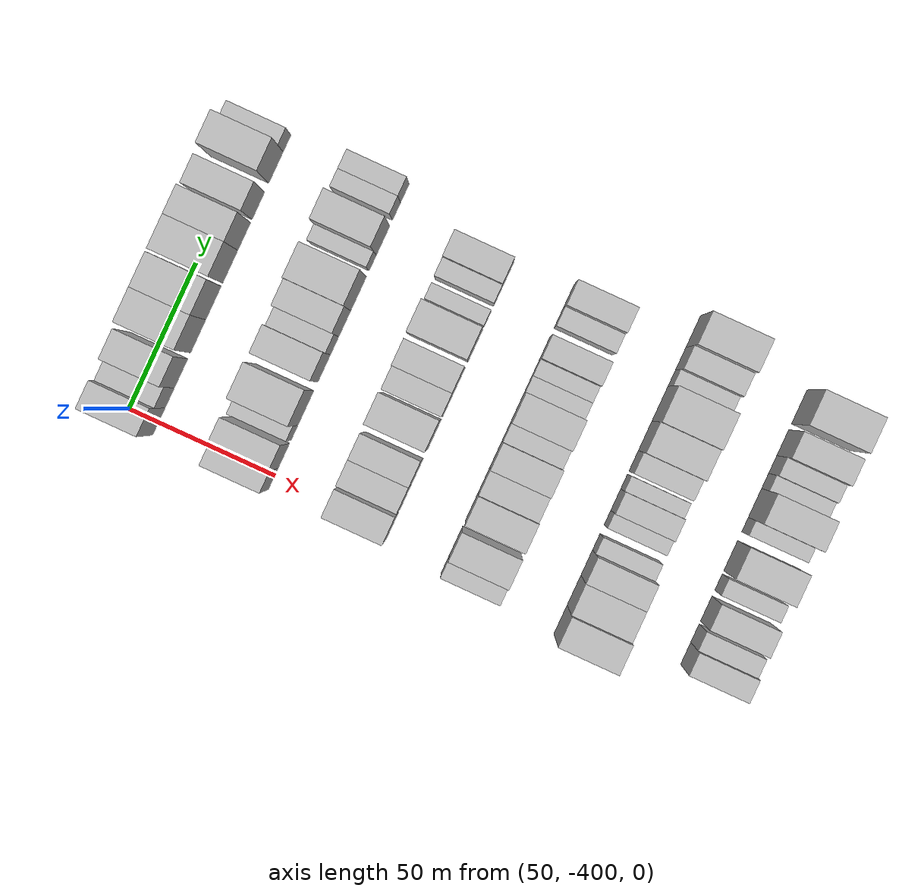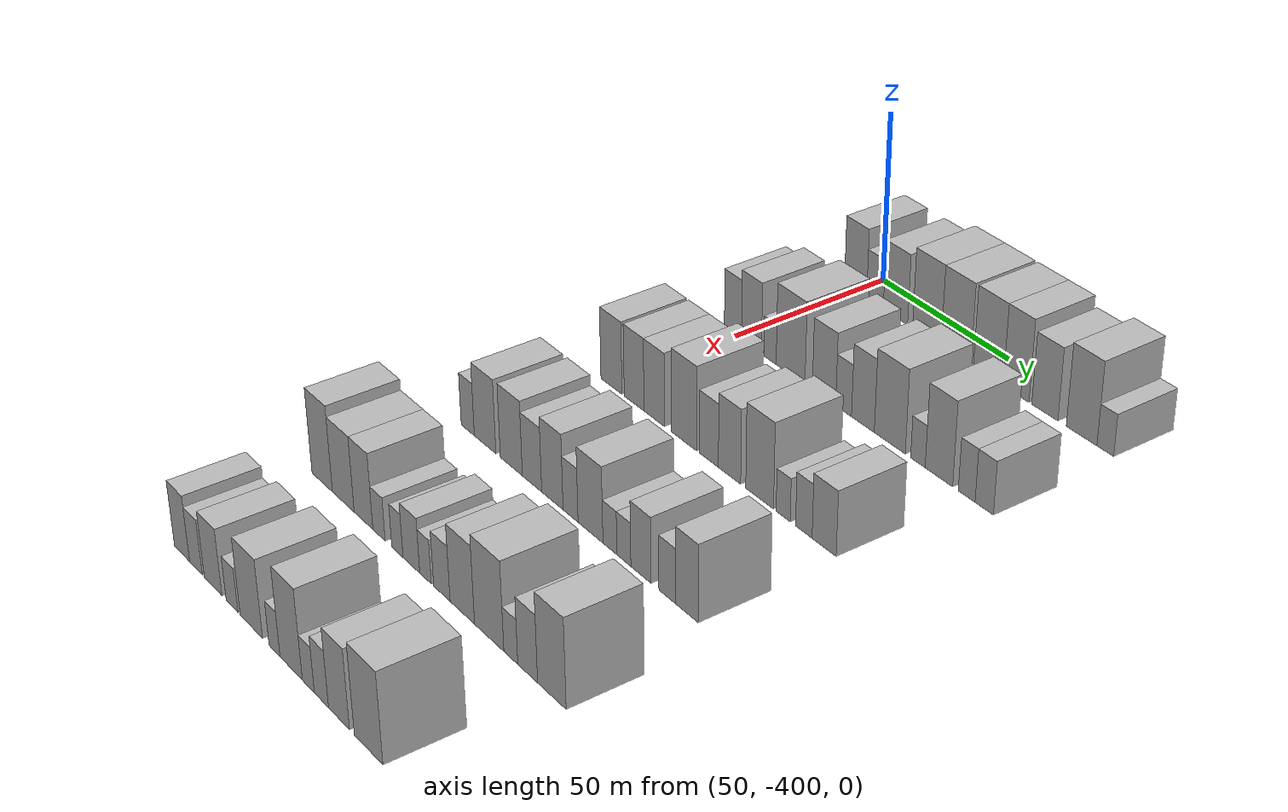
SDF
<sdf version="1.6">
 <world name="default">
  <model name="building_24">
   <static>1</static>
   <pose>50.0000 -399.8386 0 0.000000 0.000000 0.000000</pose>
   <link name="link">
    <pose>0 0 10.50 0 0 0</pose>
    <collision name="collision"><geometry><box><size>20.0000 9.3667 21.0000</size></box></geometry></collision>
    <visual name="visual">
     <cast_shadows>0</cast_shadows>
     <geometry><box><size>20.0000 9.3667 21.0000</size></box></geometry>
     <material>
      <script>
       <uri>model://HANNAS_wall/materials/scripts</uri>
       <uri>model://HANNAS_wall/materials/textures</uri>
       <name>vrc/HANNAS_wall</name>
      </script>
     </material>
    </visual>
   </link>
  </model>
  <model name="building_25">
   <static>1</static>
   <pose>50.0000 -391.6832 0 0.000000 0.000000 0.000000</pose>
   <link name="link">
    <pose>0 0 7.50 0 0 0</pose>
    <collision name="collision"><geometry><box><size>20.0000 6.9440 15.0000</size></box></geometry></collision>
    <visual name="visual">
     <cast_shadows>0</cast_shadows>
     <geometry><box><size>20.0000 6.9440 15.0000</size></box></geometry>
     <material>
      <script>
       <uri>model://HANNAS_wall/materials/scripts</uri>
       <uri>model://HANNAS_wall/materials/textures</uri>
       <name>vrc/HANNAS_wall</name>
      </script>
     </material>
    </visual>
   </link>
  </model>
  <model name="building_26">
   <static>1</static>
   <pose>50.0000 -383.2100 0 0.000000 0.000000 0.000000</pose>
   <link name="link">
    <pose>0 0 10.50 0 0 0</pose>
    <collision name="collision"><geometry><box><size>20.0000 10.0023 21.0000</size></box></geometry></collision>
    <visual name="visual">
     <cast_shadows>0</cast_shadows>
     <geometry><box><size>20.0000 10.0023 21.0000</size></box></geometry>
     <material>
      <script>
       <uri>model://HANNAS_wall/materials/scripts</uri>
       <uri>model://HANNAS_wall/materials/textures</uri>
       <name>vrc/HANNAS_wall</name>
      </script>
     </material>
    </visual>
   </link>
  </model>
  <model name="building_27">
   <static>1</static>
   <pose>50.0000 -370.5010 0 0.000000 0.000000 0.000000</pose>
   <link name="link">
    <pose>0 0 12.00 0 0 0</pose>
    <collision name="collision"><geometry><box><size>20.0000 11.4157 24.0000</size></box></geometry></collision>
    <visual name="visual">
     <cast_shadows>0</cast_shadows>
     <geometry><box><size>20.0000 11.4157 24.0000</size></box></geometry>
     <material>
      <script>
       <uri>model://HANNAS_wall/materials/scripts</uri>
       <uri>model://HANNAS_wall/materials/textures</uri>
       <name>vrc/HANNAS_wall</name>
      </script>
     </material>
    </visual>
   </link>
  </model>
  <model name="building_28">
   <static>1</static>
   <pose>50.0000 -358.9997 0 0.000000 0.000000 0.000000</pose>
   <link name="link">
    <pose>0 0 12.00 0 0 0</pose>
    <collision name="collision"><geometry><box><size>20.0000 11.5869 24.0000</size></box></geometry></collision>
    <visual name="visual">
     <cast_shadows>0</cast_shadows>
     <geometry><box><size>20.0000 11.5869 24.0000</size></box></geometry>
     <material>
      <script>
       <uri>model://HANNAS_wall/materials/scripts</uri>
       <uri>model://HANNAS_wall/materials/textures</uri>
       <name>vrc/HANNAS_wall</name>
      </script>
     </material>
    </visual>
   </link>
  </model>
  <model name="building_29">
   <static>1</static>
   <pose>50.0000 -346.5559 0 0.000000 0.000000 0.000000</pose>
   <link name="link">
    <pose>0 0 12.00 0 0 0</pose>
    <collision name="collision"><geometry><box><size>20.0000 11.3006 24.0000</size></box></geometry></collision>
    <visual name="visual">
     <cast_shadows>0</cast_shadows>
     <geometry><box><size>20.0000 11.3006 24.0000</size></box></geometry>
     <material>
      <script>
       <uri>model://HANNAS_wall/materials/scripts</uri>
       <uri>model://HANNAS_wall/materials/textures</uri>
       <name>vrc/HANNAS_wall</name>
      </script>
     </material>
    </visual>
   </link>
  </model>
  <model name="building_30">
   <static>1</static>
   <pose>50.0000 -336.1024 0 0.000000 0.000000 0.000000</pose>
   <link name="link">
    <pose>0 0 12.00 0 0 0</pose>
    <collision name="collision"><geometry><box><size>20.0000 9.6063 24.0000</size></box></geometry></collision>
    <visual name="visual">
     <cast_shadows>0</cast_shadows>
     <geometry><box><size>20.0000 9.6063 24.0000</size></box></geometry>
     <material>
      <script>
       <uri>model://HANNAS_wall/materials/scripts</uri>
       <uri>model://HANNAS_wall/materials/textures</uri>
       <name>vrc/HANNAS_wall</name>
      </script>
     </material>
    </visual>
   </link>
  </model>
  <model name="building_31">
   <static>1</static>
   <pose>50.0000 -325.5463 0 0.000000 0.000000 0.000000</pose>
   <link name="link">
    <pose>0 0 10.50 0 0 0</pose>
    <collision name="collision"><geometry><box><size>20.0000 9.5060 21.0000</size></box></geometry></collision>
    <visual name="visual">
     <cast_shadows>0</cast_shadows>
     <geometry><box><size>20.0000 9.5060 21.0000</size></box></geometry>
     <material>
      <script>
       <uri>model://HANNAS_wall/materials/scripts</uri>
       <uri>model://HANNAS_wall/materials/textures</uri>
       <name>vrc/HANNAS_wall</name>
      </script>
     </material>
    </visual>
   </link>
  </model>
  <model name="building_32">
   <static>1</static>
   <pose>50.0000 -312.3909 0 0.000000 0.000000 0.000000</pose>
   <link name="link">
    <pose>0 0 12.00 0 0 0</pose>
    <collision name="collision"><geometry><box><size>20.0000 10.8048 24.0000</size></box></geometry></collision>
    <visual name="visual">
     <cast_shadows>0</cast_shadows>
     <geometry><box><size>20.0000 10.8048 24.0000</size></box></geometry>
     <material>
      <script>
       <uri>model://HANNAS_wall/materials/scripts</uri>
       <uri>model://HANNAS_wall/materials/textures</uri>
       <name>vrc/HANNAS_wall</name>
      </script>
     </material>
    </visual>
   </link>
  </model>
  <model name="building_33">
   <static>1</static>
   <pose>50.0000 -304.0890 0 0.000000 0.000000 0.000000</pose>
   <link name="link">
    <pose>0 0 6.00 0 0 0</pose>
    <collision name="collision"><geometry><box><size>20.0000 5.7989 12.0000</size></box></geometry></collision>
    <visual name="visual">
     <cast_shadows>0</cast_shadows>
     <geometry><box><size>20.0000 5.7989 12.0000</size></box></geometry>
     <material>
      <script>
       <uri>model://HANNAS_wall/materials/scripts</uri>
       <uri>model://HANNAS_wall/materials/textures</uri>
       <name>vrc/HANNAS_wall</name>
      </script>
     </material>
    </visual>
   </link>
  </model>
  <model name="building_160">
   <static>1</static>
   <pose>90.0000 -401.1252 0 0.000000 0.000000 0.000000</pose>
   <link name="link">
    <pose>0 0 9.00 0 0 0</pose>
    <collision name="collision"><geometry><box><size>20.0000 7.4250 18.0000</size></box></geometry></collision>
    <visual name="visual">
     <cast_shadows>0</cast_shadows>
     <geometry><box><size>20.0000 7.4250 18.0000</size></box></geometry>
     <material>
      <script>
       <uri>model://HANNAS_wall/materials/scripts</uri>
       <uri>model://HANNAS_wall/materials/textures</uri>
       <name>vrc/HANNAS_wall</name>
      </script>
     </material>
    </visual>
   </link>
  </model>
  <model name="building_161">
   <static>1</static>
   <pose>90.0000 -393.1442 0 0.000000 0.000000 0.000000</pose>
   <link name="link">
    <pose>0 0 10.50 0 0 0</pose>
    <collision name="collision"><geometry><box><size>20.0000 8.5371 21.0000</size></box></geometry></collision>
    <visual name="visual">
     <cast_shadows>0</cast_shadows>
     <geometry><box><size>20.0000 8.5371 21.0000</size></box></geometry>
     <material>
      <script>
       <uri>model://HANNAS_wall/materials/scripts</uri>
       <uri>model://HANNAS_wall/materials/textures</uri>
       <name>vrc/HANNAS_wall</name>
      </script>
     </material>
    </visual>
   </link>
  </model>
  <model name="building_162">
   <static>1</static>
   <pose>90.0000 -385.2806 0 0.000000 0.000000 0.000000</pose>
   <link name="link">
    <pose>0 0 6.00 0 0 0</pose>
    <collision name="collision"><geometry><box><size>20.0000 5.1901 12.0000</size></box></geometry></collision>
    <visual name="visual">
     <cast_shadows>0</cast_shadows>
     <geometry><box><size>20.0000 5.1901 12.0000</size></box></geometry>
     <material>
      <script>
       <uri>model://HANNAS_wall/materials/scripts</uri>
       <uri>model://HANNAS_wall/materials/textures</uri>
       <name>vrc/HANNAS_wall</name>
      </script>
     </material>
    </visual>
   </link>
  </model>
  <model name="building_163">
   <static>1</static>
   <pose>90.0000 -376.7225 0 0.000000 0.000000 0.000000</pose>
   <link name="link">
    <pose>0 0 12.00 0 0 0</pose>
    <collision name="collision"><geometry><box><size>20.0000 11.9262 24.0000</size></box></geometry></collision>
    <visual name="visual">
     <cast_shadows>0</cast_shadows>
     <geometry><box><size>20.0000 11.9262 24.0000</size></box></geometry>
     <material>
      <script>
       <uri>model://HANNAS_wall/materials/scripts</uri>
       <uri>model://HANNAS_wall/materials/textures</uri>
       <name>vrc/HANNAS_wall</name>
      </script>
     </material>
    </visual>
   </link>
  </model>
  <model name="building_164">
   <static>1</static>
   <pose>90.0000 -363.0831 0 0.000000 0.000000 0.000000</pose>
   <link name="link">
    <pose>0 0 10.50 0 0 0</pose>
    <collision name="collision"><geometry><box><size>20.0000 9.3526 21.0000</size></box></geometry></collision>
    <visual name="visual">
     <cast_shadows>0</cast_shadows>
     <geometry><box><size>20.0000 9.3526 21.0000</size></box></geometry>
     <material>
      <script>
       <uri>model://HANNAS_wall/materials/scripts</uri>
       <uri>model://HANNAS_wall/materials/textures</uri>
       <name>vrc/HANNAS_wall</name>
      </script>
     </material>
    </visual>
   </link>
  </model>
  <model name="building_165">
   <static>1</static>
   <pose>90.0000 -355.2886 0 0.000000 0.000000 0.000000</pose>
   <link name="link">
    <pose>0 0 7.50 0 0 0</pose>
    <collision name="collision"><geometry><box><size>20.0000 6.2364 15.0000</size></box></geometry></collision>
    <visual name="visual">
     <cast_shadows>0</cast_shadows>
     <geometry><box><size>20.0000 6.2364 15.0000</size></box></geometry>
     <material>
      <script>
       <uri>model://HANNAS_wall/materials/scripts</uri>
       <uri>model://HANNAS_wall/materials/textures</uri>
       <name>vrc/HANNAS_wall</name>
      </script>
     </material>
    </visual>
   </link>
  </model>
  <model name="building_166">
   <static>1</static>
   <pose>90.0000 -347.7368 0 0.000000 0.000000 0.000000</pose>
   <link name="link">
    <pose>0 0 10.50 0 0 0</pose>
    <collision name="collision"><geometry><box><size>20.0000 8.8673 21.0000</size></box></geometry></collision>
    <visual name="visual">
     <cast_shadows>0</cast_shadows>
     <geometry><box><size>20.0000 8.8673 21.0000</size></box></geometry>
     <material>
      <script>
       <uri>model://HANNAS_wall/materials/scripts</uri>
       <uri>model://HANNAS_wall/materials/textures</uri>
       <name>vrc/HANNAS_wall</name>
      </script>
     </material>
    </visual>
   </link>
  </model>
  <model name="building_167">
   <static>1</static>
   <pose>90.0000 -337.4164 0 0.000000 0.000000 0.000000</pose>
   <link name="link">
    <pose>0 0 12.00 0 0 0</pose>
    <collision name="collision"><geometry><box><size>20.0000 11.7734 24.0000</size></box></geometry></collision>
    <visual name="visual">
     <cast_shadows>0</cast_shadows>
     <geometry><box><size>20.0000 11.7734 24.0000</size></box></geometry>
     <material>
      <script>
       <uri>model://HANNAS_wall/materials/scripts</uri>
       <uri>model://HANNAS_wall/materials/textures</uri>
       <name>vrc/HANNAS_wall</name>
      </script>
     </material>
    </visual>
   </link>
  </model>
  <model name="building_168">
   <static>1</static>
   <pose>90.0000 -326.8389 0 0.000000 0.000000 0.000000</pose>
   <link name="link">
    <pose>0 0 6.00 0 0 0</pose>
    <collision name="collision"><geometry><box><size>20.0000 5.3818 12.0000</size></box></geometry></collision>
    <visual name="visual">
     <cast_shadows>0</cast_shadows>
     <geometry><box><size>20.0000 5.3818 12.0000</size></box></geometry>
     <material>
      <script>
       <uri>model://HANNAS_wall/materials/scripts</uri>
       <uri>model://HANNAS_wall/materials/textures</uri>
       <name>vrc/HANNAS_wall</name>
      </script>
     </material>
    </visual>
   </link>
  </model>
  <model name="building_169">
   <static>1</static>
   <pose>90.0000 -319.1315 0 0.000000 0.000000 0.000000</pose>
   <link name="link">
    <pose>0 0 12.00 0 0 0</pose>
    <collision name="collision"><geometry><box><size>20.0000 10.0330 24.0000</size></box></geometry></collision>
    <visual name="visual">
     <cast_shadows>0</cast_shadows>
     <geometry><box><size>20.0000 10.0330 24.0000</size></box></geometry>
     <material>
      <script>
       <uri>model://HANNAS_wall/materials/scripts</uri>
       <uri>model://HANNAS_wall/materials/textures</uri>
       <name>vrc/HANNAS_wall</name>
      </script>
     </material>
    </visual>
   </link>
  </model>
  <model name="building_170">
   <static>1</static>
   <pose>90.0000 -309.1130 0 0.000000 0.000000 0.000000</pose>
   <link name="link">
    <pose>0 0 7.50 0 0 0</pose>
    <collision name="collision"><geometry><box><size>20.0000 6.0039 15.0000</size></box></geometry></collision>
    <visual name="visual">
     <cast_shadows>0</cast_shadows>
     <geometry><box><size>20.0000 6.0039 15.0000</size></box></geometry>
     <material>
      <script>
       <uri>model://HANNAS_wall/materials/scripts</uri>
       <uri>model://HANNAS_wall/materials/textures</uri>
       <name>vrc/HANNAS_wall</name>
      </script>
     </material>
    </visual>
   </link>
  </model>
  <model name="building_171">
   <static>1</static>
   <pose>90.0000 -302.8953 0 0.000000 0.000000 0.000000</pose>
   <link name="link">
    <pose>0 0 7.50 0 0 0</pose>
    <collision name="collision"><geometry><box><size>20.0000 6.4315 15.0000</size></box></geometry></collision>
    <visual name="visual">
     <cast_shadows>0</cast_shadows>
     <geometry><box><size>20.0000 6.4315 15.0000</size></box></geometry>
     <material>
      <script>
       <uri>model://HANNAS_wall/materials/scripts</uri>
       <uri>model://HANNAS_wall/materials/textures</uri>
       <name>vrc/HANNAS_wall</name>
      </script>
     </material>
    </visual>
   </link>
  </model>
  <model name="building_303">
   <static>1</static>
   <pose>130.0000 -398.7020 0 0.000000 0.000000 0.000000</pose>
   <link name="link">
    <pose>0 0 10.50 0 0 0</pose>
    <collision name="collision"><geometry><box><size>20.0000 9.3342 21.0000</size></box></geometry></collision>
    <visual name="visual">
     <cast_shadows>0</cast_shadows>
     <geometry><box><size>20.0000 9.3342 21.0000</size></box></geometry>
     <material>
      <script>
       <uri>model://HANNAS_wall/materials/scripts</uri>
       <uri>model://HANNAS_wall/materials/textures</uri>
       <name>vrc/HANNAS_wall</name>
      </script>
     </material>
    </visual>
   </link>
  </model>
  <model name="building_304">
   <static>1</static>
   <pose>130.0000 -388.7244 0 0.000000 0.000000 0.000000</pose>
   <link name="link">
    <pose>0 0 10.50 0 0 0</pose>
    <collision name="collision"><geometry><box><size>20.0000 8.6208 21.0000</size></box></geometry></collision>
    <visual name="visual">
     <cast_shadows>0</cast_shadows>
     <geometry><box><size>20.0000 8.6208 21.0000</size></box></geometry>
     <material>
      <script>
       <uri>model://HANNAS_wall/materials/scripts</uri>
       <uri>model://HANNAS_wall/materials/textures</uri>
       <name>vrc/HANNAS_wall</name>
      </script>
     </material>
    </visual>
   </link>
  </model>
  <model name="building_305">
   <static>1</static>
   <pose>130.0000 -380.0397 0 0.000000 0.000000 0.000000</pose>
   <link name="link">
    <pose>0 0 10.50 0 0 0</pose>
    <collision name="collision"><geometry><box><size>20.0000 8.7486 21.0000</size></box></geometry></collision>
    <visual name="visual">
     <cast_shadows>0</cast_shadows>
     <geometry><box><size>20.0000 8.7486 21.0000</size></box></geometry>
     <material>
      <script>
       <uri>model://HANNAS_wall/materials/scripts</uri>
       <uri>model://HANNAS_wall/materials/textures</uri>
       <name>vrc/HANNAS_wall</name>
      </script>
     </material>
    </visual>
   </link>
  </model>
  <model name="building_306">
   <static>1</static>
   <pose>130.0000 -367.4345 0 0.000000 0.000000 0.000000</pose>
   <link name="link">
    <pose>0 0 12.00 0 0 0</pose>
    <collision name="collision"><geometry><box><size>20.0000 10.4618 24.0000</size></box></geometry></collision>
    <visual name="visual">
     <cast_shadows>0</cast_shadows>
     <geometry><box><size>20.0000 10.4618 24.0000</size></box></geometry>
     <material>
      <script>
       <uri>model://HANNAS_wall/materials/scripts</uri>
       <uri>model://HANNAS_wall/materials/textures</uri>
       <name>vrc/HANNAS_wall</name>
      </script>
     </material>
    </visual>
   </link>
  </model>
  <model name="building_307">
   <static>1</static>
   <pose>130.0000 -357.2949 0 0.000000 0.000000 0.000000</pose>
   <link name="link">
    <pose>0 0 9.00 0 0 0</pose>
    <collision name="collision"><geometry><box><size>20.0000 7.8173 18.0000</size></box></geometry></collision>
    <visual name="visual">
     <cast_shadows>0</cast_shadows>
     <geometry><box><size>20.0000 7.8173 18.0000</size></box></geometry>
     <material>
      <script>
       <uri>model://HANNAS_wall/materials/scripts</uri>
       <uri>model://HANNAS_wall/materials/textures</uri>
       <name>vrc/HANNAS_wall</name>
      </script>
     </material>
    </visual>
   </link>
  </model>
  <model name="building_308">
   <static>1</static>
   <pose>130.0000 -348.9485 0 0.000000 0.000000 0.000000</pose>
   <link name="link">
    <pose>0 0 10.50 0 0 0</pose>
    <collision name="collision"><geometry><box><size>20.0000 8.8755 21.0000</size></box></geometry></collision>
    <visual name="visual">
     <cast_shadows>0</cast_shadows>
     <geometry><box><size>20.0000 8.8755 21.0000</size></box></geometry>
     <material>
      <script>
       <uri>model://HANNAS_wall/materials/scripts</uri>
       <uri>model://HANNAS_wall/materials/textures</uri>
       <name>vrc/HANNAS_wall</name>
      </script>
     </material>
    </visual>
   </link>
  </model>
  <model name="building_309">
   <static>1</static>
   <pose>130.0000 -337.1103 0 0.000000 0.000000 0.000000</pose>
   <link name="link">
    <pose>0 0 12.00 0 0 0</pose>
    <collision name="collision"><geometry><box><size>20.0000 10.8010 24.0000</size></box></geometry></collision>
    <visual name="visual">
     <cast_shadows>0</cast_shadows>
     <geometry><box><size>20.0000 10.8010 24.0000</size></box></geometry>
     <material>
      <script>
       <uri>model://HANNAS_wall/materials/scripts</uri>
       <uri>model://HANNAS_wall/materials/textures</uri>
       <name>vrc/HANNAS_wall</name>
      </script>
     </material>
    </visual>
   </link>
  </model>
  <model name="building_310">
   <static>1</static>
   <pose>130.0000 -328.0255 0 0.000000 0.000000 0.000000</pose>
   <link name="link">
    <pose>0 0 6.00 0 0 0</pose>
    <collision name="collision"><geometry><box><size>20.0000 5.3686 12.0000</size></box></geometry></collision>
    <visual name="visual">
     <cast_shadows>0</cast_shadows>
     <geometry><box><size>20.0000 5.3686 12.0000</size></box></geometry>
     <material>
      <script>
       <uri>model://HANNAS_wall/materials/scripts</uri>
       <uri>model://HANNAS_wall/materials/textures</uri>
       <name>vrc/HANNAS_wall</name>
      </script>
     </material>
    </visual>
   </link>
  </model>
  <model name="building_311">
   <static>1</static>
   <pose>130.0000 -320.2541 0 0.000000 0.000000 0.000000</pose>
   <link name="link">
    <pose>0 0 7.50 0 0 0</pose>
    <collision name="collision"><geometry><box><size>20.0000 6.1741 15.0000</size></box></geometry></collision>
    <visual name="visual">
     <cast_shadows>0</cast_shadows>
     <geometry><box><size>20.0000 6.1741 15.0000</size></box></geometry>
     <material>
      <script>
       <uri>model://HANNAS_wall/materials/scripts</uri>
       <uri>model://HANNAS_wall/materials/textures</uri>
       <name>vrc/HANNAS_wall</name>
      </script>
     </material>
    </visual>
   </link>
  </model>
  <model name="building_312">
   <static>1</static>
   <pose>130.0000 -312.7483 0 0.000000 0.000000 0.000000</pose>
   <link name="link">
    <pose>0 0 9.00 0 0 0</pose>
    <collision name="collision"><geometry><box><size>20.0000 8.8376 18.0000</size></box></geometry></collision>
    <visual name="visual">
     <cast_shadows>0</cast_shadows>
     <geometry><box><size>20.0000 8.8376 18.0000</size></box></geometry>
     <material>
      <script>
       <uri>model://HANNAS_wall/materials/scripts</uri>
       <uri>model://HANNAS_wall/materials/textures</uri>
       <name>vrc/HANNAS_wall</name>
      </script>
     </material>
    </visual>
   </link>
  </model>
  <model name="building_439">
   <static>1</static>
   <pose>170.0000 -402.5901 0 0.000000 0.000000 0.000000</pose>
   <link name="link">
    <pose>0 0 7.50 0 0 0</pose>
    <collision name="collision"><geometry><box><size>20.0000 6.0770 15.0000</size></box></geometry></collision>
    <visual name="visual">
     <cast_shadows>0</cast_shadows>
     <geometry><box><size>20.0000 6.0770 15.0000</size></box></geometry>
     <material>
      <script>
       <uri>model://HANNAS_wall/materials/scripts</uri>
       <uri>model://HANNAS_wall/materials/textures</uri>
       <name>vrc/HANNAS_wall</name>
      </script>
     </material>
    </visual>
   </link>
  </model>
  <model name="building_440">
   <static>1</static>
   <pose>170.0000 -394.6334 0 0.000000 0.000000 0.000000</pose>
   <link name="link">
    <pose>0 0 10.50 0 0 0</pose>
    <collision name="collision"><geometry><box><size>20.0000 9.8365 21.0000</size></box></geometry></collision>
    <visual name="visual">
     <cast_shadows>0</cast_shadows>
     <geometry><box><size>20.0000 9.8365 21.0000</size></box></geometry>
     <material>
      <script>
       <uri>model://HANNAS_wall/materials/scripts</uri>
       <uri>model://HANNAS_wall/materials/textures</uri>
       <name>vrc/HANNAS_wall</name>
      </script>
     </material>
    </visual>
   </link>
  </model>
  <model name="building_441">
   <static>1</static>
   <pose>170.0000 -382.8192 0 0.000000 0.000000 0.000000</pose>
   <link name="link">
    <pose>0 0 10.50 0 0 0</pose>
    <collision name="collision"><geometry><box><size>20.0000 9.7918 21.0000</size></box></geometry></collision>
    <visual name="visual">
     <cast_shadows>0</cast_shadows>
     <geometry><box><size>20.0000 9.7918 21.0000</size></box></geometry>
     <material>
      <script>
       <uri>model://HANNAS_wall/materials/scripts</uri>
       <uri>model://HANNAS_wall/materials/textures</uri>
       <name>vrc/HANNAS_wall</name>
      </script>
     </material>
    </visual>
   </link>
  </model>
  <model name="building_442">
   <static>1</static>
   <pose>170.0000 -373.6999 0 0.000000 0.000000 0.000000</pose>
   <link name="link">
    <pose>0 0 9.00 0 0 0</pose>
    <collision name="collision"><geometry><box><size>20.0000 8.4469 18.0000</size></box></geometry></collision>
    <visual name="visual">
     <cast_shadows>0</cast_shadows>
     <geometry><box><size>20.0000 8.4469 18.0000</size></box></geometry>
     <material>
      <script>
       <uri>model://HANNAS_wall/materials/scripts</uri>
       <uri>model://HANNAS_wall/materials/textures</uri>
       <name>vrc/HANNAS_wall</name>
      </script>
     </material>
    </visual>
   </link>
  </model>
  <model name="building_443">
   <static>1</static>
   <pose>170.0000 -364.9078 0 0.000000 0.000000 0.000000</pose>
   <link name="link">
    <pose>0 0 10.50 0 0 0</pose>
    <collision name="collision"><geometry><box><size>20.0000 9.1371 21.0000</size></box></geometry></collision>
    <visual name="visual">
     <cast_shadows>0</cast_shadows>
     <geometry><box><size>20.0000 9.1371 21.0000</size></box></geometry>
     <material>
      <script>
       <uri>model://HANNAS_wall/materials/scripts</uri>
       <uri>model://HANNAS_wall/materials/textures</uri>
       <name>vrc/HANNAS_wall</name>
      </script>
     </material>
    </visual>
   </link>
  </model>
  <model name="building_444">
   <static>1</static>
   <pose>170.0000 -357.1944 0 0.000000 0.000000 0.000000</pose>
   <link name="link">
    <pose>0 0 7.50 0 0 0</pose>
    <collision name="collision"><geometry><box><size>20.0000 6.2899 15.0000</size></box></geometry></collision>
    <visual name="visual">
     <cast_shadows>0</cast_shadows>
     <geometry><box><size>20.0000 6.2899 15.0000</size></box></geometry>
     <material>
      <script>
       <uri>model://HANNAS_wall/materials/scripts</uri>
       <uri>model://HANNAS_wall/materials/textures</uri>
       <name>vrc/HANNAS_wall</name>
      </script>
     </material>
    </visual>
   </link>
  </model>
  <model name="building_445">
   <static>1</static>
   <pose>170.0000 -348.9274 0 0.000000 0.000000 0.000000</pose>
   <link name="link">
    <pose>0 0 10.50 0 0 0</pose>
    <collision name="collision"><geometry><box><size>20.0000 10.2440 21.0000</size></box></geometry></collision>
    <visual name="visual">
     <cast_shadows>0</cast_shadows>
     <geometry><box><size>20.0000 10.2440 21.0000</size></box></geometry>
     <material>
      <script>
       <uri>model://HANNAS_wall/materials/scripts</uri>
       <uri>model://HANNAS_wall/materials/textures</uri>
       <name>vrc/HANNAS_wall</name>
      </script>
     </material>
    </visual>
   </link>
  </model>
  <model name="building_446">
   <static>1</static>
   <pose>170.0000 -340.9810 0 0.000000 0.000000 0.000000</pose>
   <link name="link">
    <pose>0 0 6.00 0 0 0</pose>
    <collision name="collision"><geometry><box><size>20.0000 5.6489 12.0000</size></box></geometry></collision>
    <visual name="visual">
     <cast_shadows>0</cast_shadows>
     <geometry><box><size>20.0000 5.6489 12.0000</size></box></geometry>
     <material>
      <script>
       <uri>model://HANNAS_wall/materials/scripts</uri>
       <uri>model://HANNAS_wall/materials/textures</uri>
       <name>vrc/HANNAS_wall</name>
      </script>
     </material>
    </visual>
   </link>
  </model>
  <model name="building_447">
   <static>1</static>
   <pose>170.0000 -335.3822 0 0.000000 0.000000 0.000000</pose>
   <link name="link">
    <pose>0 0 6.00 0 0 0</pose>
    <collision name="collision"><geometry><box><size>20.0000 5.5487 12.0000</size></box></geometry></collision>
    <visual name="visual">
     <cast_shadows>0</cast_shadows>
     <geometry><box><size>20.0000 5.5487 12.0000</size></box></geometry>
     <material>
      <script>
       <uri>model://HANNAS_wall/materials/scripts</uri>
       <uri>model://HANNAS_wall/materials/textures</uri>
       <name>vrc/HANNAS_wall</name>
      </script>
     </material>
    </visual>
   </link>
  </model>
  <model name="building_448">
   <static>1</static>
   <pose>170.0000 -328.6248 0 0.000000 0.000000 0.000000</pose>
   <link name="link">
    <pose>0 0 9.00 0 0 0</pose>
    <collision name="collision"><geometry><box><size>20.0000 7.9662 18.0000</size></box></geometry></collision>
    <visual name="visual">
     <cast_shadows>0</cast_shadows>
     <geometry><box><size>20.0000 7.9662 18.0000</size></box></geometry>
     <material>
      <script>
       <uri>model://HANNAS_wall/materials/scripts</uri>
       <uri>model://HANNAS_wall/materials/textures</uri>
       <name>vrc/HANNAS_wall</name>
      </script>
     </material>
    </visual>
   </link>
  </model>
  <model name="building_449">
   <static>1</static>
   <pose>170.0000 -318.3990 0 0.000000 0.000000 0.000000</pose>
   <link name="link">
    <pose>0 0 7.50 0 0 0</pose>
    <collision name="collision"><geometry><box><size>20.0000 6.4855 15.0000</size></box></geometry></collision>
    <visual name="visual">
     <cast_shadows>0</cast_shadows>
     <geometry><box><size>20.0000 6.4855 15.0000</size></box></geometry>
     <material>
      <script>
       <uri>model://HANNAS_wall/materials/scripts</uri>
       <uri>model://HANNAS_wall/materials/textures</uri>
       <name>vrc/HANNAS_wall</name>
      </script>
     </material>
    </visual>
   </link>
  </model>
  <model name="building_450">
   <static>1</static>
   <pose>170.0000 -310.9374 0 0.000000 0.000000 0.000000</pose>
   <link name="link">
    <pose>0 0 10.50 0 0 0</pose>
    <collision name="collision"><geometry><box><size>20.0000 8.4378 21.0000</size></box></geometry></collision>
    <visual name="visual">
     <cast_shadows>0</cast_shadows>
     <geometry><box><size>20.0000 8.4378 21.0000</size></box></geometry>
     <material>
      <script>
       <uri>model://HANNAS_wall/materials/scripts</uri>
       <uri>model://HANNAS_wall/materials/textures</uri>
       <name>vrc/HANNAS_wall</name>
      </script>
     </material>
    </visual>
   </link>
  </model>
  <model name="building_566">
   <static>1</static>
   <pose>210.0000 -403.4954 0 0.000000 0.000000 0.000000</pose>
   <link name="link">
    <pose>0 0 12.00 0 0 0</pose>
    <collision name="collision"><geometry><box><size>20.0000 9.8978 24.0000</size></box></geometry></collision>
    <visual name="visual">
     <cast_shadows>0</cast_shadows>
     <geometry><box><size>20.0000 9.8978 24.0000</size></box></geometry>
     <material>
      <script>
       <uri>model://HANNAS_wall/materials/scripts</uri>
       <uri>model://HANNAS_wall/materials/textures</uri>
       <name>vrc/HANNAS_wall</name>
      </script>
     </material>
    </visual>
   </link>
  </model>
  <model name="building_567">
   <static>1</static>
   <pose>210.0000 -393.3821 0 0.000000 0.000000 0.000000</pose>
   <link name="link">
    <pose>0 0 10.50 0 0 0</pose>
    <collision name="collision"><geometry><box><size>20.0000 10.3287 21.0000</size></box></geometry></collision>
    <visual name="visual">
     <cast_shadows>0</cast_shadows>
     <geometry><box><size>20.0000 10.3287 21.0000</size></box></geometry>
     <material>
      <script>
       <uri>model://HANNAS_wall/materials/scripts</uri>
       <uri>model://HANNAS_wall/materials/textures</uri>
       <name>vrc/HANNAS_wall</name>
      </script>
     </material>
    </visual>
   </link>
  </model>
  <model name="building_568">
   <static>1</static>
   <pose>210.0000 -383.8613 0 0.000000 0.000000 0.000000</pose>
   <link name="link">
    <pose>0 0 10.50 0 0 0</pose>
    <collision name="collision"><geometry><box><size>20.0000 8.7128 21.0000</size></box></geometry></collision>
    <visual name="visual">
     <cast_shadows>0</cast_shadows>
     <geometry><box><size>20.0000 8.7128 21.0000</size></box></geometry>
     <material>
      <script>
       <uri>model://HANNAS_wall/materials/scripts</uri>
       <uri>model://HANNAS_wall/materials/textures</uri>
       <name>vrc/HANNAS_wall</name>
      </script>
     </material>
    </visual>
   </link>
  </model>
  <model name="building_569">
   <static>1</static>
   <pose>210.0000 -376.6876 0 0.000000 0.000000 0.000000</pose>
   <link name="link">
    <pose>0 0 6.00 0 0 0</pose>
    <collision name="collision"><geometry><box><size>20.0000 5.6347 12.0000</size></box></geometry></collision>
    <visual name="visual">
     <cast_shadows>0</cast_shadows>
     <geometry><box><size>20.0000 5.6347 12.0000</size></box></geometry>
     <material>
      <script>
       <uri>model://HANNAS_wall/materials/scripts</uri>
       <uri>model://HANNAS_wall/materials/textures</uri>
       <name>vrc/HANNAS_wall</name>
      </script>
     </material>
    </visual>
   </link>
  </model>
  <model name="building_570">
   <static>1</static>
   <pose>210.0000 -368.3581 0 0.000000 0.000000 0.000000</pose>
   <link name="link">
    <pose>0 0 6.00 0 0 0</pose>
    <collision name="collision"><geometry><box><size>20.0000 5.0243 12.0000</size></box></geometry></collision>
    <visual name="visual">
     <cast_shadows>0</cast_shadows>
     <geometry><box><size>20.0000 5.0243 12.0000</size></box></geometry>
     <material>
      <script>
       <uri>model://HANNAS_wall/materials/scripts</uri>
       <uri>model://HANNAS_wall/materials/textures</uri>
       <name>vrc/HANNAS_wall</name>
      </script>
     </material>
    </visual>
   </link>
  </model>
  <model name="building_571">
   <static>1</static>
   <pose>210.0000 -362.1514 0 0.000000 0.000000 0.000000</pose>
   <link name="link">
    <pose>0 0 7.50 0 0 0</pose>
    <collision name="collision"><geometry><box><size>20.0000 7.3891 15.0000</size></box></geometry></collision>
    <visual name="visual">
     <cast_shadows>0</cast_shadows>
     <geometry><box><size>20.0000 7.3891 15.0000</size></box></geometry>
     <material>
      <script>
       <uri>model://HANNAS_wall/materials/scripts</uri>
       <uri>model://HANNAS_wall/materials/textures</uri>
       <name>vrc/HANNAS_wall</name>
      </script>
     </material>
    </visual>
   </link>
  </model>
  <model name="building_572">
   <static>1</static>
   <pose>210.0000 -355.9201 0 0.000000 0.000000 0.000000</pose>
   <link name="link">
    <pose>0 0 6.00 0 0 0</pose>
    <collision name="collision"><geometry><box><size>20.0000 5.0735 12.0000</size></box></geometry></collision>
    <visual name="visual">
     <cast_shadows>0</cast_shadows>
     <geometry><box><size>20.0000 5.0735 12.0000</size></box></geometry>
     <material>
      <script>
       <uri>model://HANNAS_wall/materials/scripts</uri>
       <uri>model://HANNAS_wall/materials/textures</uri>
       <name>vrc/HANNAS_wall</name>
      </script>
     </material>
    </visual>
   </link>
  </model>
  <model name="building_573">
   <static>1</static>
   <pose>210.0000 -348.8555 0 0.000000 0.000000 0.000000</pose>
   <link name="link">
    <pose>0 0 7.50 0 0 0</pose>
    <collision name="collision"><geometry><box><size>20.0000 7.0557 15.0000</size></box></geometry></collision>
    <visual name="visual">
     <cast_shadows>0</cast_shadows>
     <geometry><box><size>20.0000 7.0557 15.0000</size></box></geometry>
     <material>
      <script>
       <uri>model://HANNAS_wall/materials/scripts</uri>
       <uri>model://HANNAS_wall/materials/textures</uri>
       <name>vrc/HANNAS_wall</name>
      </script>
     </material>
    </visual>
   </link>
  </model>
  <model name="building_574">
   <static>1</static>
   <pose>210.0000 -340.1937 0 0.000000 0.000000 0.000000</pose>
   <link name="link">
    <pose>0 0 10.50 0 0 0</pose>
    <collision name="collision"><geometry><box><size>20.0000 10.2680 21.0000</size></box></geometry></collision>
    <visual name="visual">
     <cast_shadows>0</cast_shadows>
     <geometry><box><size>20.0000 10.2680 21.0000</size></box></geometry>
     <material>
      <script>
       <uri>model://HANNAS_wall/materials/scripts</uri>
       <uri>model://HANNAS_wall/materials/textures</uri>
       <name>vrc/HANNAS_wall</name>
      </script>
     </material>
    </visual>
   </link>
  </model>
  <model name="building_575">
   <static>1</static>
   <pose>210.0000 -329.0864 0 0.000000 0.000000 0.000000</pose>
   <link name="link">
    <pose>0 0 12.00 0 0 0</pose>
    <collision name="collision"><geometry><box><size>20.0000 11.9466 24.0000</size></box></geometry></collision>
    <visual name="visual">
     <cast_shadows>0</cast_shadows>
     <geometry><box><size>20.0000 11.9466 24.0000</size></box></geometry>
     <material>
      <script>
       <uri>model://HANNAS_wall/materials/scripts</uri>
       <uri>model://HANNAS_wall/materials/textures</uri>
       <name>vrc/HANNAS_wall</name>
      </script>
     </material>
    </visual>
   </link>
  </model>
  <model name="building_576">
   <static>1</static>
   <pose>210.0000 -320.3371 0 0.000000 0.000000 0.000000</pose>
   <link name="link">
    <pose>0 0 6.00 0 0 0</pose>
    <collision name="collision"><geometry><box><size>20.0000 5.5520 12.0000</size></box></geometry></collision>
    <visual name="visual">
     <cast_shadows>0</cast_shadows>
     <geometry><box><size>20.0000 5.5520 12.0000</size></box></geometry>
     <material>
      <script>
       <uri>model://HANNAS_wall/materials/scripts</uri>
       <uri>model://HANNAS_wall/materials/textures</uri>
       <name>vrc/HANNAS_wall</name>
      </script>
     </material>
    </visual>
   </link>
  </model>
  <model name="building_577">
   <static>1</static>
   <pose>210.0000 -313.6682 0 0.000000 0.000000 0.000000</pose>
   <link name="link">
    <pose>0 0 9.00 0 0 0</pose>
    <collision name="collision"><geometry><box><size>20.0000 7.7858 18.0000</size></box></geometry></collision>
    <visual name="visual">
     <cast_shadows>0</cast_shadows>
     <geometry><box><size>20.0000 7.7858 18.0000</size></box></geometry>
     <material>
      <script>
       <uri>model://HANNAS_wall/materials/scripts</uri>
       <uri>model://HANNAS_wall/materials/textures</uri>
       <name>vrc/HANNAS_wall</name>
      </script>
     </material>
    </visual>
   </link>
  </model>
  <model name="building_578">
   <static>1</static>
   <pose>210.0000 -304.2933 0 0.000000 0.000000 0.000000</pose>
   <link name="link">
    <pose>0 0 12.00 0 0 0</pose>
    <collision name="collision"><geometry><box><size>20.0000 10.9640 24.0000</size></box></geometry></collision>
    <visual name="visual">
     <cast_shadows>0</cast_shadows>
     <geometry><box><size>20.0000 10.9640 24.0000</size></box></geometry>
     <material>
      <script>
       <uri>model://HANNAS_wall/materials/scripts</uri>
       <uri>model://HANNAS_wall/materials/textures</uri>
       <name>vrc/HANNAS_wall</name>
      </script>
     </material>
    </visual>
   </link>
  </model>
  <model name="building_706">
   <static>1</static>
   <pose>250.0000 -396.7141 0 0.000000 0.000000 0.000000</pose>
   <link name="link">
    <pose>0 0 9.00 0 0 0</pose>
    <collision name="collision"><geometry><box><size>20.0000 7.6115 18.0000</size></box></geometry></collision>
    <visual name="visual">
     <cast_shadows>0</cast_shadows>
     <geometry><box><size>20.0000 7.6115 18.0000</size></box></geometry>
     <material>
      <script>
       <uri>model://HANNAS_wall/materials/scripts</uri>
       <uri>model://HANNAS_wall/materials/textures</uri>
       <name>vrc/HANNAS_wall</name>
      </script>
     </material>
    </visual>
   </link>
  </model>
  <model name="building_707">
   <static>1</static>
   <pose>250.0000 -389.7396 0 0.000000 0.000000 0.000000</pose>
   <link name="link">
    <pose>0 0 7.50 0 0 0</pose>
    <collision name="collision"><geometry><box><size>20.0000 6.3375 15.0000</size></box></geometry></collision>
    <visual name="visual">
     <cast_shadows>0</cast_shadows>
     <geometry><box><size>20.0000 6.3375 15.0000</size></box></geometry>
     <material>
      <script>
       <uri>model://HANNAS_wall/materials/scripts</uri>
       <uri>model://HANNAS_wall/materials/textures</uri>
       <name>vrc/HANNAS_wall</name>
      </script>
     </material>
    </visual>
   </link>
  </model>
  <model name="building_708">
   <static>1</static>
   <pose>250.0000 -381.2644 0 0.000000 0.000000 0.000000</pose>
   <link name="link">
    <pose>0 0 9.00 0 0 0</pose>
    <collision name="collision"><geometry><box><size>20.0000 8.6128 18.0000</size></box></geometry></collision>
    <visual name="visual">
     <cast_shadows>0</cast_shadows>
     <geometry><box><size>20.0000 8.6128 18.0000</size></box></geometry>
     <material>
      <script>
       <uri>model://HANNAS_wall/materials/scripts</uri>
       <uri>model://HANNAS_wall/materials/textures</uri>
       <name>vrc/HANNAS_wall</name>
      </script>
     </material>
    </visual>
   </link>
  </model>
  <model name="building_709">
   <static>1</static>
   <pose>250.0000 -372.1258 0 0.000000 0.000000 0.000000</pose>
   <link name="link">
    <pose>0 0 6.00 0 0 0</pose>
    <collision name="collision"><geometry><box><size>20.0000 5.6644 12.0000</size></box></geometry></collision>
    <visual name="visual">
     <cast_shadows>0</cast_shadows>
     <geometry><box><size>20.0000 5.6644 12.0000</size></box></geometry>
     <material>
      <script>
       <uri>model://HANNAS_wall/materials/scripts</uri>
       <uri>model://HANNAS_wall/materials/textures</uri>
       <name>vrc/HANNAS_wall</name>
      </script>
     </material>
    </visual>
   </link>
  </model>
  <model name="building_710">
   <static>1</static>
   <pose>250.0000 -363.0587 0 0.000000 0.000000 0.000000</pose>
   <link name="link">
    <pose>0 0 10.50 0 0 0</pose>
    <collision name="collision"><geometry><box><size>20.0000 10.4698 21.0000</size></box></geometry></collision>
    <visual name="visual">
     <cast_shadows>0</cast_shadows>
     <geometry><box><size>20.0000 10.4698 21.0000</size></box></geometry>
     <material>
      <script>
       <uri>model://HANNAS_wall/materials/scripts</uri>
       <uri>model://HANNAS_wall/materials/textures</uri>
       <name>vrc/HANNAS_wall</name>
      </script>
     </material>
    </visual>
   </link>
  </model>
  <model name="building_711">
   <static>1</static>
   <pose>250.0000 -352.3348 0 0.000000 0.000000 0.000000</pose>
   <link name="link">
    <pose>0 0 6.00 0 0 0</pose>
    <collision name="collision"><geometry><box><size>20.0000 4.9780 12.0000</size></box></geometry></collision>
    <visual name="visual">
     <cast_shadows>0</cast_shadows>
     <geometry><box><size>20.0000 4.9780 12.0000</size></box></geometry>
     <material>
      <script>
       <uri>model://HANNAS_wall/materials/scripts</uri>
       <uri>model://HANNAS_wall/materials/textures</uri>
       <name>vrc/HANNAS_wall</name>
      </script>
     </material>
    </visual>
   </link>
  </model>
  <model name="building_712">
   <static>1</static>
   <pose>250.0000 -344.8723 0 0.000000 0.000000 0.000000</pose>
   <link name="link">
    <pose>0 0 12.00 0 0 0</pose>
    <collision name="collision"><geometry><box><size>20.0000 9.9469 24.0000</size></box></geometry></collision>
    <visual name="visual">
     <cast_shadows>0</cast_shadows>
     <geometry><box><size>20.0000 9.9469 24.0000</size></box></geometry>
     <material>
      <script>
       <uri>model://HANNAS_wall/materials/scripts</uri>
       <uri>model://HANNAS_wall/materials/textures</uri>
       <name>vrc/HANNAS_wall</name>
      </script>
     </material>
    </visual>
   </link>
  </model>
  <model name="building_713">
   <static>1</static>
   <pose>250.0000 -337.2707 0 0.000000 0.000000 0.000000</pose>
   <link name="link">
    <pose>0 0 6.00 0 0 0</pose>
    <collision name="collision"><geometry><box><size>20.0000 5.2563 12.0000</size></box></geometry></collision>
    <visual name="visual">
     <cast_shadows>0</cast_shadows>
     <geometry><box><size>20.0000 5.2563 12.0000</size></box></geometry>
     <material>
      <script>
       <uri>model://HANNAS_wall/materials/scripts</uri>
       <uri>model://HANNAS_wall/materials/textures</uri>
       <name>vrc/HANNAS_wall</name>
      </script>
     </material>
    </visual>
   </link>
  </model>
  <model name="building_714">
   <static>1</static>
   <pose>250.0000 -331.5922 0 0.000000 0.000000 0.000000</pose>
   <link name="link">
    <pose>0 0 7.50 0 0 0</pose>
    <collision name="collision"><geometry><box><size>20.0000 6.1007 15.0000</size></box></geometry></collision>
    <visual name="visual">
     <cast_shadows>0</cast_shadows>
     <geometry><box><size>20.0000 6.1007 15.0000</size></box></geometry>
     <material>
      <script>
       <uri>model://HANNAS_wall/materials/scripts</uri>
       <uri>model://HANNAS_wall/materials/textures</uri>
       <name>vrc/HANNAS_wall</name>
      </script>
     </material>
    </visual>
   </link>
  </model>
  <model name="building_715">
   <static>1</static>
   <pose>250.0000 -324.1043 0 0.000000 0.000000 0.000000</pose>
   <link name="link">
    <pose>0 0 10.50 0 0 0</pose>
    <collision name="collision"><geometry><box><size>20.0000 8.8750 21.0000</size></box></geometry></collision>
    <visual name="visual">
     <cast_shadows>0</cast_shadows>
     <geometry><box><size>20.0000 8.8750 21.0000</size></box></geometry>
     <material>
      <script>
       <uri>model://HANNAS_wall/materials/scripts</uri>
       <uri>model://HANNAS_wall/materials/textures</uri>
       <name>vrc/HANNAS_wall</name>
      </script>
     </material>
    </visual>
   </link>
  </model>
  <model name="building_716">
   <static>1</static>
   <pose>250.0000 -311.8038 0 0.000000 0.000000 0.000000</pose>
   <link name="link">
    <pose>0 0 12.00 0 0 0</pose>
    <collision name="collision"><geometry><box><size>20.0000 11.7261 24.0000</size></box></geometry></collision>
    <visual name="visual">
     <cast_shadows>0</cast_shadows>
     <geometry><box><size>20.0000 11.7261 24.0000</size></box></geometry>
     <material>
      <script>
       <uri>model://HANNAS_wall/materials/scripts</uri>
       <uri>model://HANNAS_wall/materials/textures</uri>
       <name>vrc/HANNAS_wall</name>
      </script>
     </material>
    </visual>
   </link>
  </model>
 </world>
</sdf>
